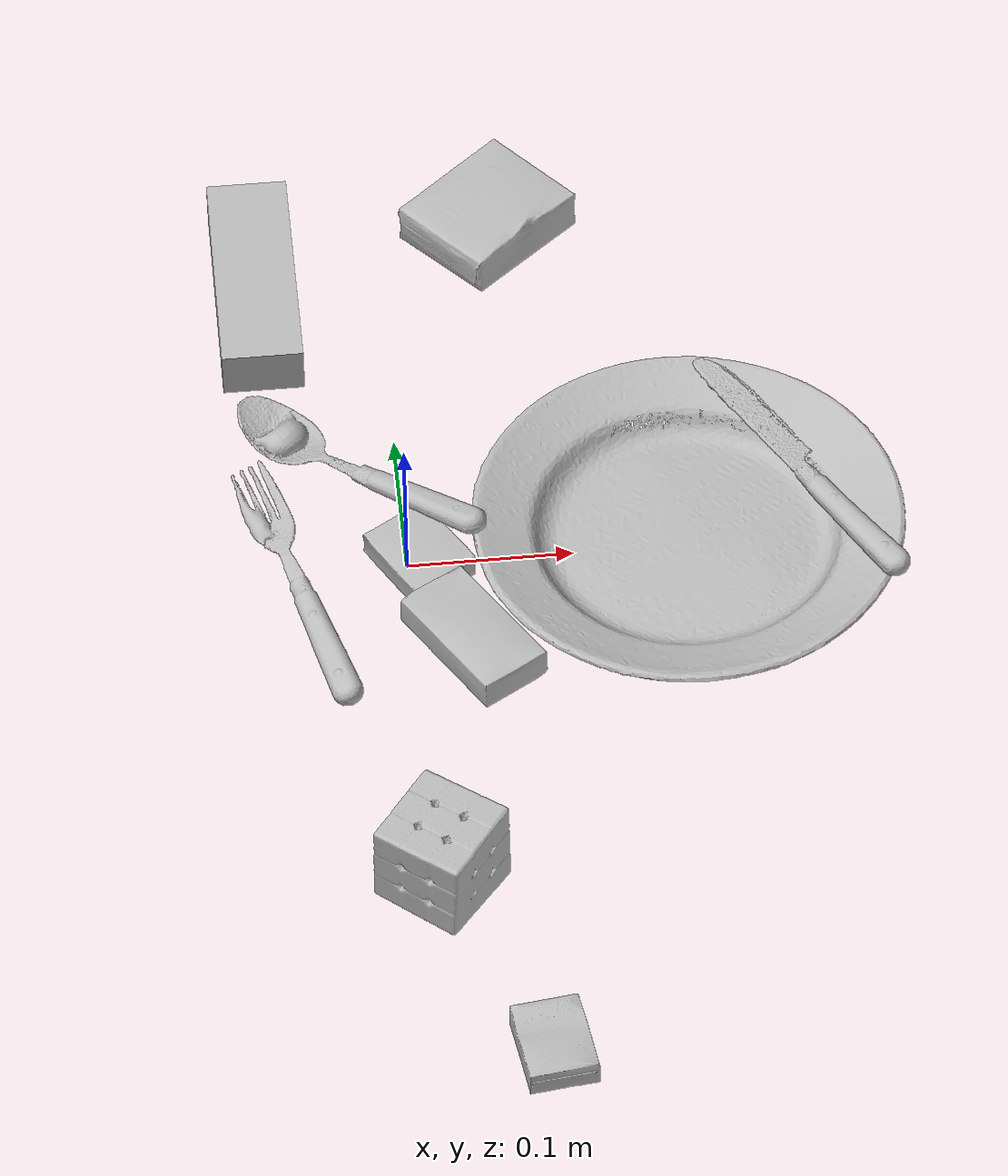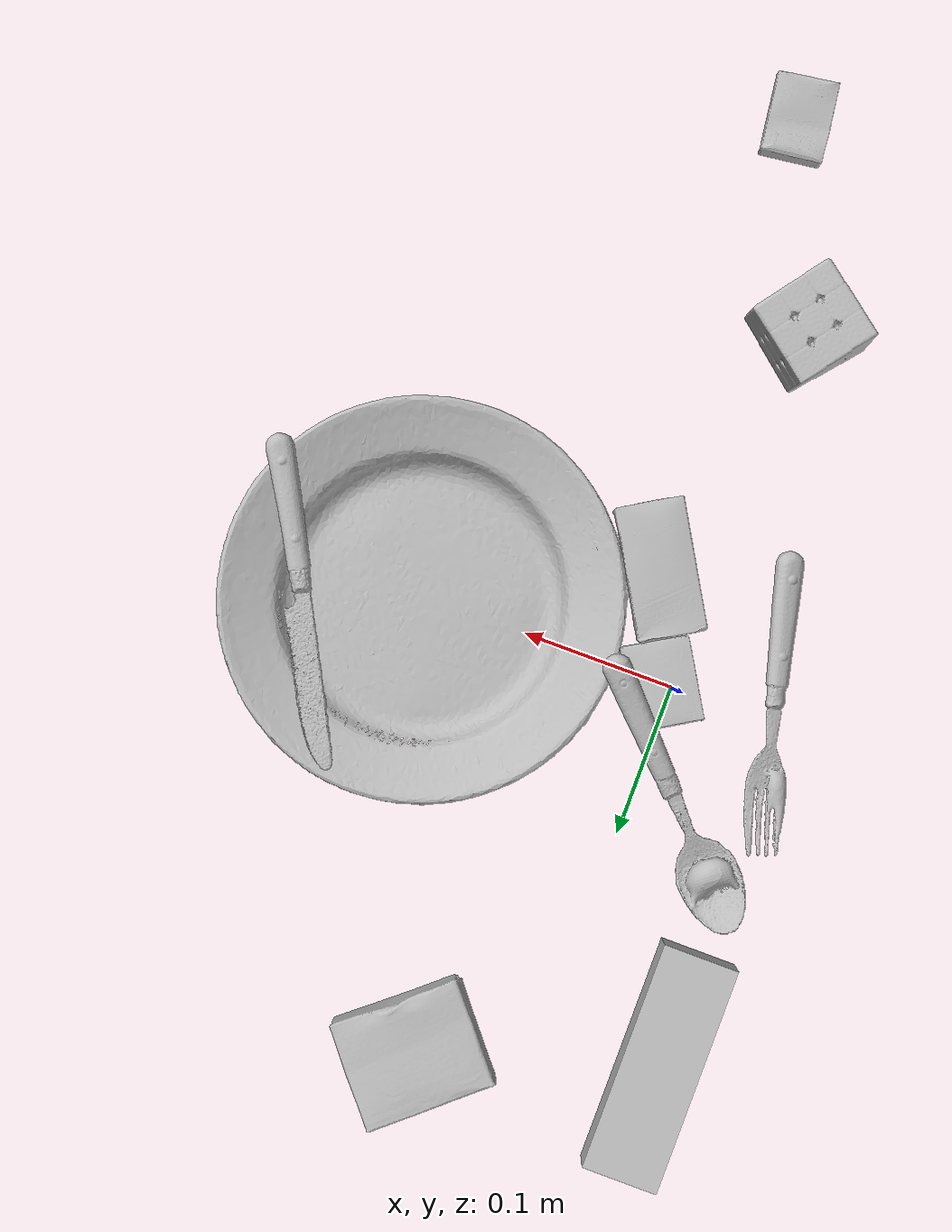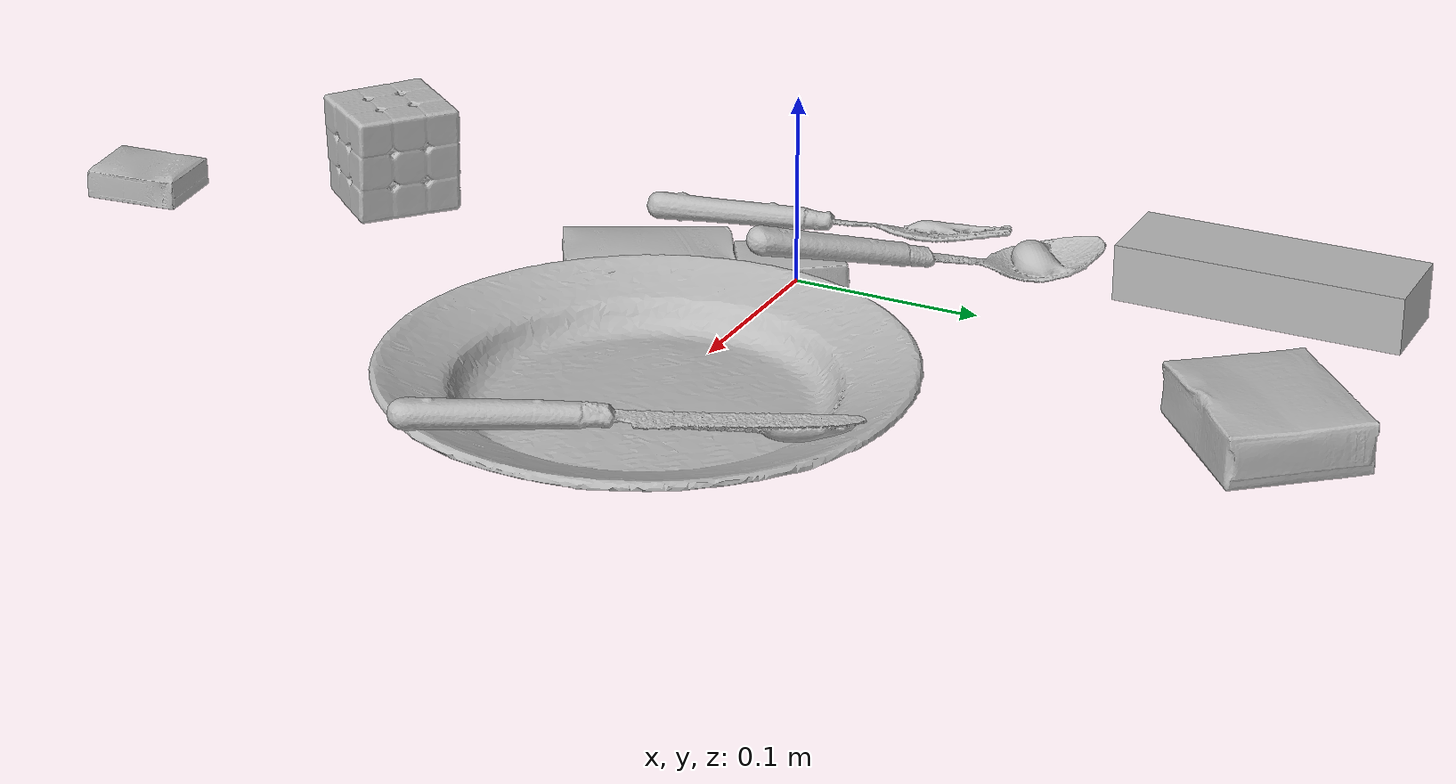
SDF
<sdf version="1.4">
  <world name="default">
    <light name="light1" type="point">
      <pose>0 0 1 0 0 0</pose>
      <diffuse>3 3 3 1</diffuse>
      <specular>3 3 3 1</specular>
    </light>
    <light name="light2" type="point">
      <pose>0 0.5 2 0 0 0</pose>
      <diffuse>1 1 1 1</diffuse>
      <specular>1 1 1 1</specular>
    </light>
    <light name="light3" type="point">
      <pose>0 0.5 2 0 0 0</pose>
      <diffuse>3 3 3 1</diffuse>
      <specular>3 3 3 1</specular>
    </light>
    <scene>
      <ambient>0.7 0.7 0.7</ambient>
    </scene>
    <model name="box11">
      <link name="link_box11">
        <collision name="default">
          <geometry>
            <mesh>
              <uri>model://pudding_box/collision_meshes/collision.obj</uri>
              <scale>0.5 0.5 0.5</scale>
            </mesh>
          </geometry>
          <surface>
            <friction>
              <ode>
                <mu>0.5</mu>
                <mu2>0.5</mu2>
              </ode>
            </friction>
          <contact>
        <ode>
            <max_vel>0</max_vel>
            <min_depth>0.0001</min_depth>
            <kp>1e8</kp>
        </ode>
    </contact></surface>
        </collision>
        <visual name="default">
          <geometry>
            <mesh>
              <uri>model://pudding_box/visual_meshes/visual.dae</uri>
              <scale>0.5 0.5 0.5</scale>
            </mesh>
          </geometry>
        </visual>
        <inertial>
          <mass>0.03786866366863251</mass>
          <pose>0.00024474109522998333 0.00040339428232982755 -0.0002594413817860186 0.005213102272185547 -0.006603797326323335 0.020079825161634604</pose>
          <inertia>
            <ixx>1.0702144e-05</ixx>
            <iyy>7.2004777e-06</iyy>
            <izz>1.580451e-05</izz>
            <ixy>0</ixy>
            <ixz>0</ixz>
            <iyz>0</iyz>
          </inertia>
        </inertial>
      </link>
      <pose>0.007211051415652037 -0.000462163909105584 0.009862925857305527 0.022325398740878293 -0.011383426140608909 0.5397449201769747</pose>
    </model>
    <model name="box12">
      <link name="link_box12">
        <collision name="default">
          <geometry>
            <mesh>
              <uri>model://gelatin_box/collision_meshes/collision.obj</uri>
              <scale>1.0 1.0 1.0</scale>
            </mesh>
          </geometry>
          <surface>
            <friction>
              <ode>
                <mu>0.5</mu>
                <mu2>0.5</mu2>
              </ode>
            </friction>
          <contact>
        <ode>
            <max_vel>0</max_vel>
            <min_depth>0.0001</min_depth>
            <kp>1e8</kp>
        </ode>
    </contact></surface>
        </collision>
        <visual name="default">
          <geometry>
            <mesh>
              <uri>model://gelatin_box/visual_meshes/visual.dae</uri>
              <scale>1.0 1.0 1.0</scale>
            </mesh>
          </geometry>
        </visual>
        <inertial>
          <mass>0.12588495016098022</mass>
          <pose>0.0004319618456065655 0.00011156871914863586 -0.0003640321083366871 -0.0010503723379331838 -0.004755819617810625 0.016440561335826234</pose>
          <inertia>
            <ixx>8.886451e-05</ixx>
            <iyy>6.3475454e-05</iyy>
            <izz>0.00013527159</izz>
            <ixy>0</ixy>
            <ixz>0</ixz>
            <iyz>0</iyz>
          </inertia>
        </inertial>
      </link>
      <pose>0.07402090728282928 0.27529633045196533 0.015168316662311554 0.005597477029925013 -0.007304576420525115 -0.8773636321600461</pose>
    </model>
    <model name="box13">
      <link name="link_box13">
        <collision name="default">
          <geometry>
            <mesh>
              <uri>model://rubiks_cube/collision_meshes/collision.obj</uri>
              <scale>1.0 1.0 1.0</scale>
            </mesh>
          </geometry>
          <surface>
            <friction>
              <ode>
                <mu>0.5</mu>
                <mu2>0.5</mu2>
              </ode>
            </friction>
          <contact>
        <ode>
            <max_vel>0</max_vel>
            <min_depth>0.0001</min_depth>
            <kp>1e8</kp>
        </ode>
    </contact></surface>
        </collision>
        <visual name="default">
          <geometry>
            <mesh>
              <uri>model://rubiks_cube/visual_meshes/visual.dae</uri>
              <scale>1.0 1.0 1.0</scale>
            </mesh>
          </geometry>
        </visual>
        <inertial>
          <mass>0.24923686683177948</mass>
          <pose>2.6721039830590598e-05 5.256966323941015e-05 -7.264316082000732e-06 -0.05467307197132049 -0.09814178001312306 -0.03445579173896148</pose>
          <inertia>
            <ixx>0.00013772011</ixx>
            <iyy>0.00013707785</iyy>
            <izz>0.00013886133</izz>
            <ixy>0</ixy>
            <ixz>0</ixz>
            <iyz>0</iyz>
          </inertia>
        </inertial>
      </link>
      <pose>-0.0006410929490812123 -0.24398154020309448 0.028678949922323227 -5.536086997644053e-06 -1.73328121806434e-06 0.9145123434061041</pose>
    </model>
    <model name="box21">
      <link name="link_box21">
        <collision name="default">
          <geometry>
            <mesh>
              <uri>model://cracker_box/collision_meshes/collision.obj</uri>
              <scale>0.25 0.25 0.25</scale>
            </mesh>
          </geometry>
          <surface>
            <friction>
              <ode>
                <mu>0.5</mu>
                <mu2>0.5</mu2>
              </ode>
            </friction>
          <contact>
        <ode>
            <max_vel>0</max_vel>
            <min_depth>0.0001</min_depth>
            <kp>1e8</kp>
        </ode>
    </contact></surface>
        </collision>
        <visual name="default">
          <geometry>
            <mesh>
              <uri>model://cracker_box/visual_meshes/visual.dae</uri>
              <scale>0.25 0.25 0.25</scale>
            </mesh>
          </geometry>
        </visual>
        <inertial>
          <mass>0.030397580936551094</mass>
          <pose>0.00023660376609768718 6.358562677633017e-05 -0.0004257384280208498 -0.0003162076301819785 -0.011106490531717715 0.002546795235004545</pose>
          <inertia>
            <ixx>4.8323677e-06</ixx>
            <iyy>7.979188e-06</iyy>
            <izz>1.1387034e-05</izz>
            <ixy>0</ixy>
            <ixz>0</ixz>
            <iyz>0</iyz>
          </inertia>
        </inertial>
      </link>
      <pose>0.05073612183332443 -0.37083694338798523 0.009096029214560986 -0.014050531651256295 -0.0050165677626385 -1.4440973750279633</pose>
    </model>
    <model name="box22">
      <link name="link_box22">
        <collision name="default">
          <geometry>
            <mesh>
              <uri>model://jenga/collision_meshes/collision.obj</uri>
              <scale>1.0 1.0 1.0</scale>
            </mesh>
          </geometry>
          <surface>
            <friction>
              <ode>
                <mu>0.5</mu>
                <mu2>0.5</mu2>
              </ode>
            </friction>
          <contact>
        <ode>
            <max_vel>0</max_vel>
            <min_depth>0.0001</min_depth>
            <kp>1e8</kp>
        </ode>
    </contact></surface>
        </collision>
        <visual name="default">
          <geometry>
            <mesh>
              <uri>model://jenga/visual_meshes/visual.dae</uri>
              <scale>1.0 1.0 1.0</scale>
            </mesh>
          </geometry>
        </visual>
        <inertial>
          <mass>0.22754427790641785</mass>
          <pose>-2.502855807051674e-07 -0.00010250010382151231 -4.0923401684267446e-05 0.0 -7.34215461761844e-07 0.0</pose>
          <inertia>
            <ixx>6.2967025e-05</ixx>
            <iyy>0.00042666285</iyy>
            <izz>0.00045549884</izz>
            <ixy>0</ixy>
            <ixz>0</ixz>
            <iyz>0</iyz>
          </inertia>
        </inertial>
      </link>
      <pose>-0.07539985328912735 0.22821758687496185 0.014999997802078724 4.946829383650113e-09 -1.8591557416669328e-09 1.5707661156525172</pose>
    </model>
    <model name="box23">
      <link name="link_box23">
        <collision name="default">
          <geometry>
            <mesh>
              <uri>model://sugar_box/collision_meshes/collision.obj</uri>
              <scale>0.5 0.5 0.5</scale>
            </mesh>
          </geometry>
          <surface>
            <friction>
              <ode>
                <mu>0.5</mu>
                <mu2>0.5</mu2>
              </ode>
            </friction>
          <contact>
        <ode>
            <max_vel>0</max_vel>
            <min_depth>0.0001</min_depth>
            <kp>1e8</kp>
        </ode>
    </contact></surface>
        </collision>
        <visual name="default">
          <geometry>
            <mesh>
              <uri>model://sugar_box/visual_meshes/visual.dae</uri>
              <scale>0.5 0.5 0.5</scale>
            </mesh>
          </geometry>
        </visual>
        <inertial>
          <mass>0.07313712686300278</mass>
          <pose>0.0005171863595023751 1.924554817378521e-05 -0.00018182402709499002 -0.0004046264167799433 0.0010506636386831275 0.0026153785560066108</pose>
          <inertia>
            <ixx>1.5234412e-05</ixx>
            <iyy>4.924075e-05</iyy>
            <izz>5.894705e-05</izz>
            <ixy>0</ixy>
            <ixz>0</ixz>
            <iyz>0</iyz>
          </inertia>
        </inertial>
      </link>
      <pose>0.03349500149488449 -0.06864118576049805 0.011399301700294018 0.0007778687577002961 -0.023427829285123304 -1.040835071904084</pose>
    </model>
    <model name="plate1">
      <link name="link_plate1">
        <collision name="default">
          <geometry>
            <mesh>
              <uri>model://plate/collision_meshes/collision.obj</uri>
              <scale>1.0 1.0 1.0</scale>
            </mesh>
          </geometry>
          <surface>
            <friction>
              <ode>
                <mu>0.5</mu>
                <mu2>0.5</mu2>
              </ode>
            </friction>
          <contact>
        <ode>
            <max_vel>0</max_vel>
            <min_depth>0.0001</min_depth>
            <kp>1e8</kp>
        </ode>
    </contact></surface>
        </collision>
        <visual name="default">
          <geometry>
            <mesh>
              <uri>model://plate/visual_meshes/visual.dae</uri>
              <scale>1.0 1.0 1.0</scale>
            </mesh>
          </geometry>
        </visual>
        <inertial>
          <mass>0.2069685012102127</mass>
          <pose>-0.0006044612964615226 0.0002782598603516817 -0.0010561986127868295 0.0022188143427174073 -0.003225461822968263 0.4526007532235607</pose>
          <inertia>
            <ixx>0.0009682027</ixx>
            <iyy>0.0009589421</iyy>
            <izz>0.0018936595</izz>
            <ixy>0</ixy>
            <ixz>0</ixz>
            <iyz>0</iyz>
          </inertia>
        </inertial>
      </link>
      <pose>0.16917957365512848 0.0027326198760420084 0.013733002357184887 -6.49140088244961e-08 5.804345732477173e-08 -0.3454283327285696</pose>
    </model>
    <model name="silverware1">
      <link name="link_silverware1">
        <collision name="default">
          <geometry>
            <mesh>
              <uri>model://knife/collision_meshes/collision.obj</uri>
              <scale>1.0 1.0 1.0</scale>
            </mesh>
          </geometry>
          <surface>
            <friction>
              <ode>
                <mu>0.5</mu>
                <mu2>0.5</mu2>
              </ode>
            </friction>
          <contact>
        <ode>
            <max_vel>0</max_vel>
            <min_depth>0.0001</min_depth>
            <kp>1e8</kp>
        </ode>
    </contact></surface>
        </collision>
        <visual name="default">
          <geometry>
            <mesh>
              <uri>model://knife/visual_meshes/visual.dae</uri>
              <scale>1.0 1.0 1.0</scale>
            </mesh>
          </geometry>
        </visual>
        <inertial>
          <mass>0.01404397189617157</mass>
          <pose>-0.02378525771200657 0.0015275126788765192 5.0620223191799596e-05 0.07306830572090188 0.017248424252748085 -0.00740981553779352</pose>
          <inertia>
            <ixx>3.9862488e-07</ixx>
            <iyy>5.3954667e-05</iyy>
            <izz>5.408303e-05</izz>
            <ixy>0</ixy>
            <ixz>0</ixz>
            <iyz>0</iyz>
          </inertia>
        </inertial>
      </link>
      <pose>0.2407701164484024 0.030981658026576042 0.03176293522119522 -0.11065492738519503 0.026025129093884308 2.055047854391065</pose>
    </model>
    <model name="silverware2">
      <link name="link_silverware2">
        <collision name="default">
          <geometry>
            <mesh>
              <uri>model://fork/collision_meshes/collision.obj</uri>
              <scale>1.0 1.0 1.0</scale>
            </mesh>
          </geometry>
          <surface>
            <friction>
              <ode>
                <mu>0.5</mu>
                <mu2>0.5</mu2>
              </ode>
            </friction>
          <contact>
        <ode>
            <max_vel>0</max_vel>
            <min_depth>0.0001</min_depth>
            <kp>1e8</kp>
        </ode>
    </contact></surface>
        </collision>
        <visual name="default">
          <geometry>
            <mesh>
              <uri>model://fork/visual_meshes/visual.dae</uri>
              <scale>1.0 1.0 1.0</scale>
            </mesh>
          </geometry>
        </visual>
        <inertial>
          <mass>0.012992284260690212</mass>
          <pose>-0.029570037499070168 0.0004658822435885668 0.00032188609475269914 -0.013552170713958372 -0.010977837352032947 0.014453895109592321</pose>
          <inertia>
            <ixx>4.5545306e-07</ixx>
            <iyy>3.3919117e-05</iyy>
            <izz>3.4122822e-05</izz>
            <ixy>0</ixy>
            <ixz>0</ixz>
            <iyz>0</iyz>
          </inertia>
        </inertial>
      </link>
      <pose>-0.06546454131603241 -0.013677487149834633 0.0056902337819337845 -0.17511330430675365 0.025819220889806333 1.8169708204377797</pose>
    </model>
    <model name="silverware3">
      <link name="link_silverware3">
        <collision name="default">
          <geometry>
            <mesh>
              <uri>model://spoon/collision_meshes/collision.obj</uri>
              <scale>1.0 1.0 1.0</scale>
            </mesh>
          </geometry>
          <surface>
            <friction>
              <ode>
                <mu>0.5</mu>
                <mu2>0.5</mu2>
              </ode>
            </friction>
          <contact>
        <ode>
            <max_vel>0</max_vel>
            <min_depth>0.0001</min_depth>
            <kp>1e8</kp>
        </ode>
    </contact></surface>
        </collision>
        <visual name="default">
          <geometry>
            <mesh>
              <uri>model://spoon/visual_meshes/visual.dae</uri>
              <scale>1.0 1.0 1.0</scale>
            </mesh>
          </geometry>
        </visual>
        <inertial>
          <mass>0.01562128309160471</mass>
          <pose>-0.0055263228714466095 -0.0016034174477681518 -0.0007271653157658875 0.03521671072610287 -0.03906584128735088 0.006150609582760137</pose>
          <inertia>
            <ixx>8.688809e-07</ixx>
            <iyy>5.9438455e-05</iyy>
            <izz>5.986695e-05</izz>
            <ixy>0</ixy>
            <ixz>0</ixz>
            <iyz>0</iyz>
          </inertia>
        </inertial>
      </link>
      <pose>-0.024222828447818756 0.06173153966665268 0.019483275711536407 0.05620849199301822 0.22127533459628787 2.3419568638394668</pose>
    </model>
  <physics type="ode">
      <max_contacts>50</max_contacts>
      <ode>
        <solver>
          <type>quick</type>
          <iters>75</iters>
        </solver>
        <constraints>
          <contact_max_correcting_vel>0</contact_max_correcting_vel>
          <contact_surface_layer>0</contact_surface_layer>
        </constraints>
      </ode>
    </physics></world>
</sdf>
